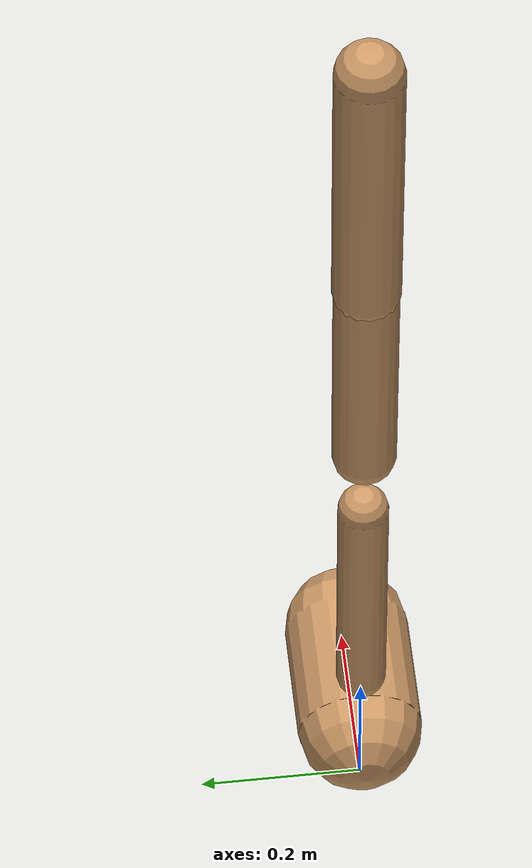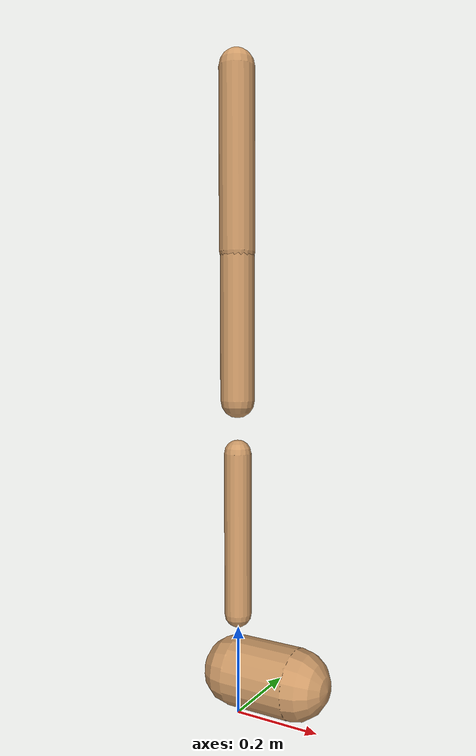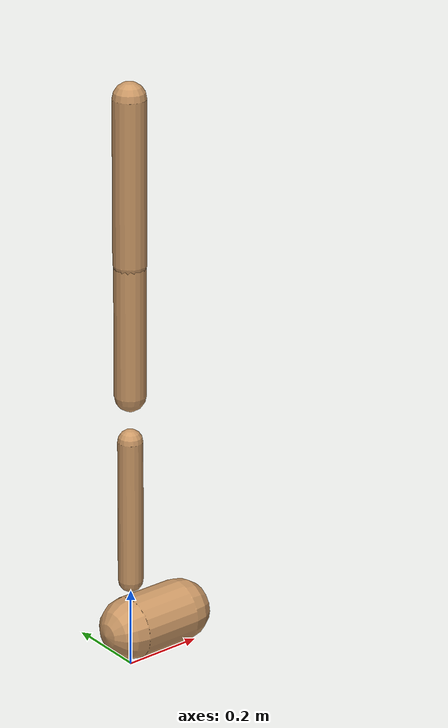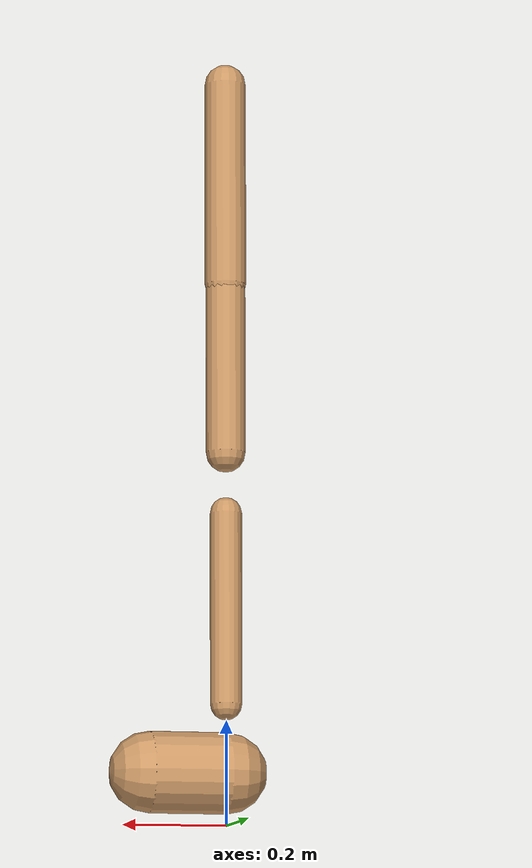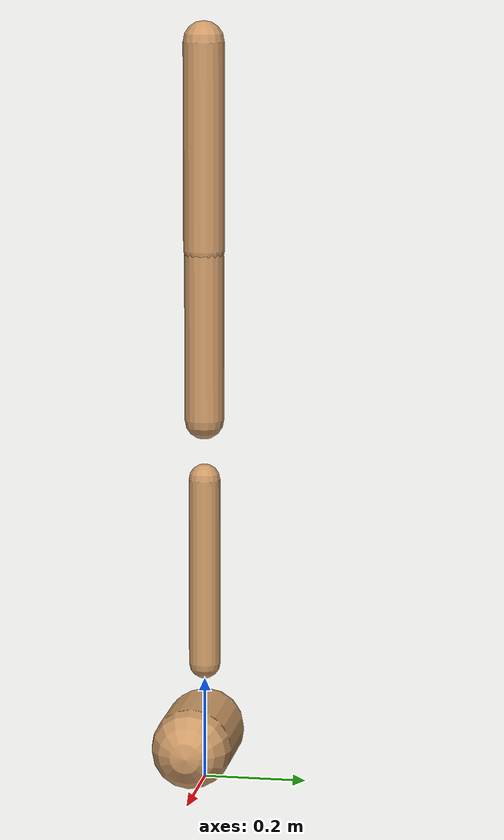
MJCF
<mujoco model="walker2d">
  <compiler angle="degree" coordinate="global" inertiafromgeom="true" />
  <default>
    <joint armature="0.01" damping=".1" limited="true" />
    <geom conaffinity="0" condim="3" contype="1" density="1000" friction="0.8 .1 .1" rgba="0.8 0.6 .4 1" />
  </default>
  <option integrator="RK4" timestep="0.002" />
  <worldbody>

    <body name="torso" pos="0 0 -0.25105428752377384">
      <joint armature="0" axis="1 0 0" damping="0" limited="false" name="ignorex" pos="0 0 0" stiffness="0" type="slide" />
      <joint armature="0" axis="0 0 1" damping="0" limited="false" name="ignorez" pos="0 0 0" ref="1.25" stiffness="0" type="slide" />
      <joint armature="0" axis="0 1 0" damping="0" limited="false" name="ignorey" pos="0 0 0" stiffness="0" type="hinge" />
      <geom fromto="0 0 1.45 0 0 1.05" name="torso_geom" size="0.040243080163462" type="capsule" />
      <body name="thigh">
        <joint axis="0 -1 0" name="thigh_joint" pos="0 0 1.05" range="-150 0" type="hinge" />
        <geom fromto="0.0 0.0 1.05 0.0 0.0 0.7189204519849455" name="thigh_geom" size="0.03852108114933428" type="capsule" />
        <body name="leg" pos="0.0 0.0 0.1189204519849455">
          <joint axis="0 -1 0" name="leg_joint" pos="0 0 0.6" range="-150 0" type="hinge" />
          <geom fromto="0.0 0.0 0.6 0.0 0.0 0.23213383553882833" name="leg_geom" size="0.030816864919467425" type="capsule" />
          <body name="foot" pos="0.0 0.0 0.13213383553882832">
            <joint axis="0 -1 0" name="foot_joint" pos="0 0 0.1" range="-45 45" type="hinge" />
            <geom fromto="0.0 0.0 0.1 0.14913276031450182 0.0 0.1" name="foot_geom" size="0.07784699855141793" type="capsule" />
          </body>
        </body>
      </body>

      <body name="thigh_left">
        <joint axis="0 -1 0" name="thigh_left_joint" pos="0 0 1.05" range="-150 0" type="hinge" />
        <geom fromto="0.0 0.0 1.05 0.0 0.0 0.7189204519849455" name="thigh_left_geom" rgba=".7 .3 .6 1" size="0.03852108114933428" type="capsule" />
        <body name="leg_left" pos="0.0 0.0 0.1189204519849455">
          <joint axis="0 -1 0" name="leg_left_joint" pos="0 0 0.6" range="-150 0" type="hinge" />
          <geom fromto="0.0 0.0 0.6 0.0 0.0 0.23213383553882833" name="leg_left_geom" rgba=".7 .3 .6 1" size="0.030816864919467425" type="capsule" />
          <body name="foot_left" pos="0.0 0.0 0.13213383553882832">
            <joint axis="0 -1 0" name="foot_left_joint" pos="0 0 0.1" range="-45 45" type="hinge" />
            <geom fromto="0.0 0.0 0.1 0.14913276031450182 0.0 0.1" name="foot_left_geom" rgba=".7 .3 .6 1" size="0.07784699855141793" type="capsule" />
          </body>
        </body>
      </body>
    </body>
  </worldbody>
  <actuator>

    <motor ctrllimited="true" ctrlrange="-1.0 1.0" gear="100" joint="thigh_joint" />
    <motor ctrllimited="true" ctrlrange="-1.0 1.0" gear="100" joint="leg_joint" />
    <motor ctrllimited="true" ctrlrange="-1.0 1.0" gear="100" joint="foot_joint" />
    <motor ctrllimited="true" ctrlrange="-1.0 1.0" gear="100" joint="thigh_left_joint" />
    <motor ctrllimited="true" ctrlrange="-1.0 1.0" gear="100" joint="leg_left_joint" />
    <motor ctrllimited="true" ctrlrange="-1.0 1.0" gear="100" joint="foot_left_joint" />

  </actuator>
</mujoco>
